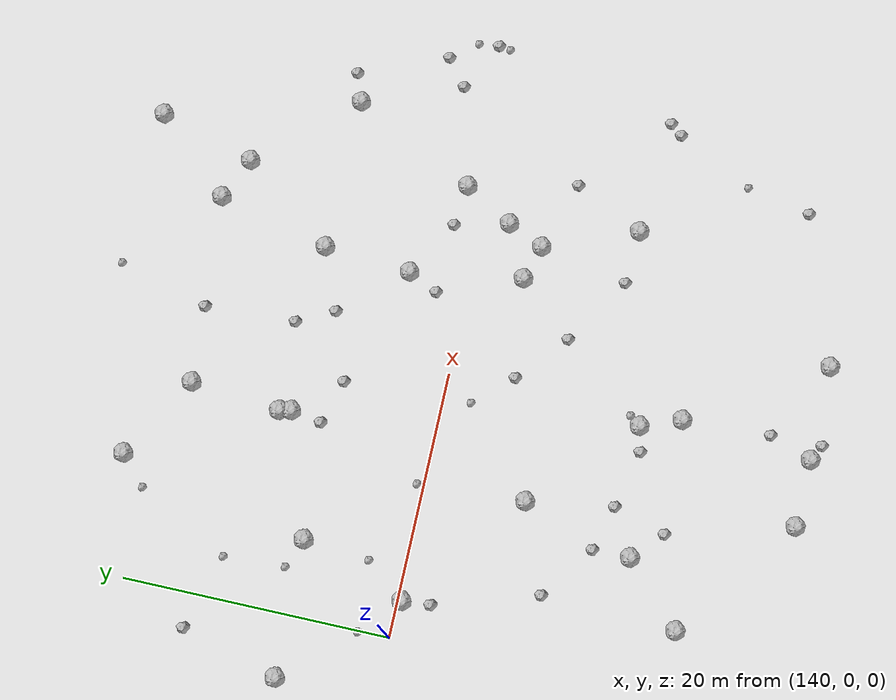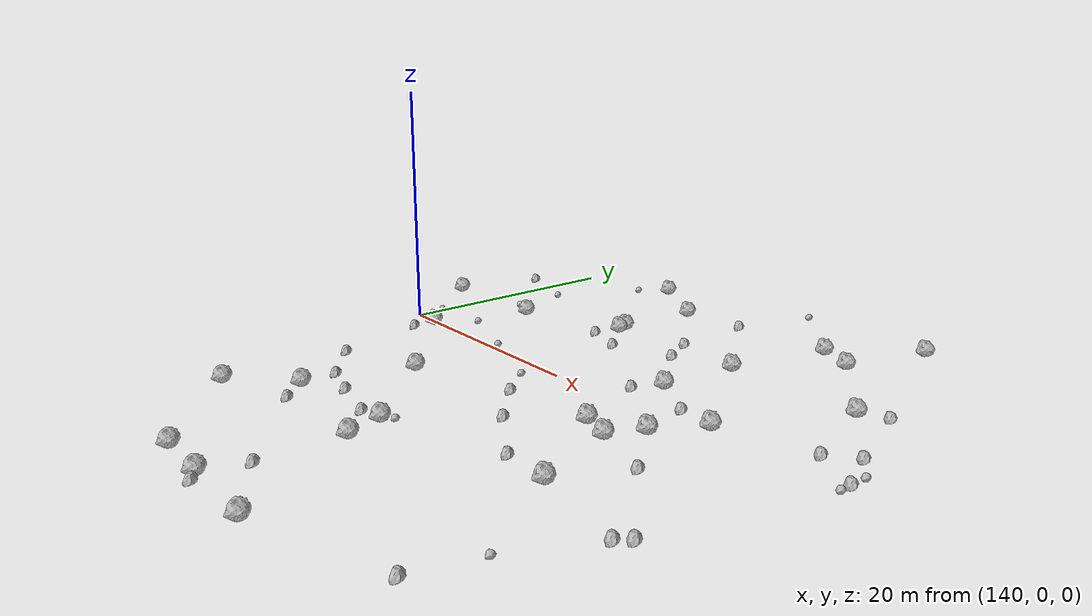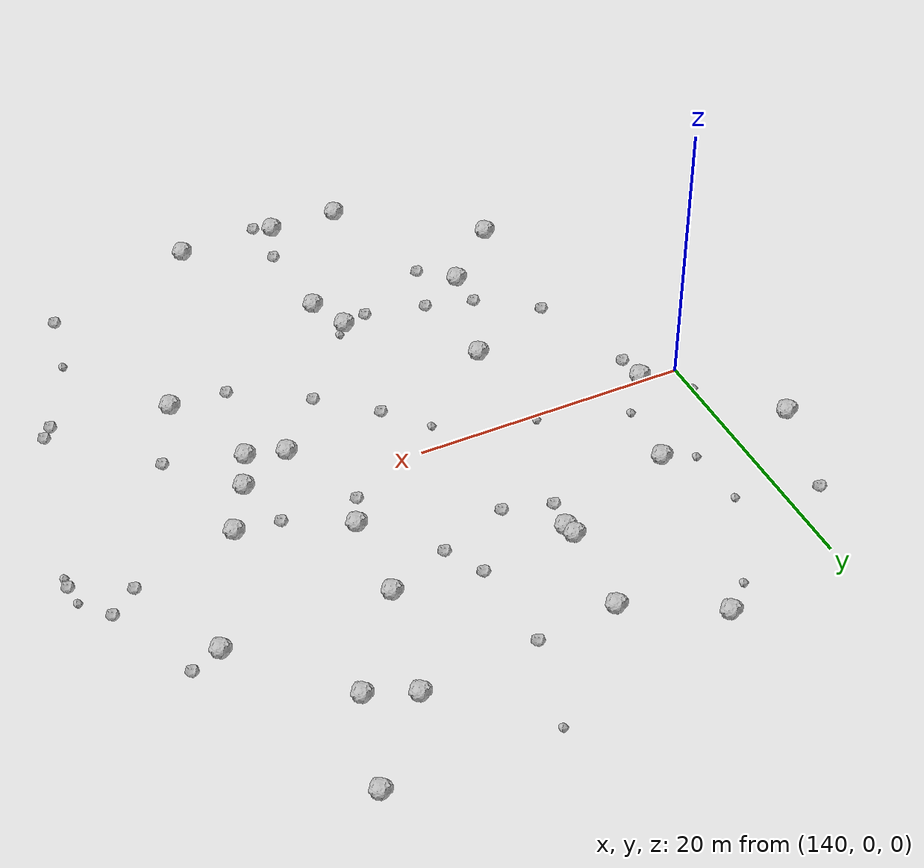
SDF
<sdf version="1.6">
 <world name="default">
  <include><uri>model://sun</uri></include>
  <model name="rock1_4_1">
   <include><uri>model://rock1</uri><pose>135.5151602363163 7.462312081634607 0.5 0 0 0</pose></include>
  </model>
  <model name="rock1_4_2">
   <include><uri>model://rock1</uri><pose>151.91533219268464 -7.51033611952402 0.5 0 0 0</pose></include>
  </model>
  <model name="rock1_4_3">
   <include><uri>model://rock1</uri><pose>175.11340357926093 25.791393028742917 0.5 0 0 0</pose></include>
  </model>
  <model name="rock1_4_4">
   <include><uri>model://rock1</uri><pose>172.32803318853678 -1.9115266356070393 0.5 0 0 0</pose></include>
  </model>
  <model name="rock1_4_5">
   <include><uri>model://rock1</uri><pose>179.3311239347376 11.251857982802186 0.5 0 0 0</pose></include>
  </model>
  <model name="rock1_4_6">
   <include><uri>model://rock1</uri><pose>160.35750781436658 -17.621638511317663 0.5 0 0 0</pose></include>
  </model>
  <model name="rock1_4_7">
   <include><uri>model://rock1</uri><pose>159.46833847939968 -27.449863391089437 0.5 0 0 0</pose></include>
  </model>
  <model name="rock1_4_8">
   <include><uri>model://rock1</uri><pose>154.37378247202068 -27.25953598522055 0.5 0 0 0</pose></include>
  </model>
  <model name="rock1_4_9">
   <include><uri>model://rock1</uri><pose>149.521458112424 -15.858248729201627 0.5 0 0 0</pose></include>
  </model>
  <model name="rock1_4_10">
   <include><uri>model://rock1</uri><pose>167.55947120354512 11.303746523114725 0.5 0 0 0</pose></include>
  </model>
  <model name="rock1_4_11">
   <include><uri>model://rock1</uri><pose>142.84798287135158 -0.24257687619884294 0.5 0 0 0</pose></include>
  </model>
  <model name="rock1_4_12">
   <include><uri>model://rock1</uri><pose>169.68619883319747 19.891013758333983 0.5 0 0 0</pose></include>
  </model>
  <model name="rock1_4_13">
   <include><uri>model://rock1</uri><pose>155.28486320425 18.634828433890675 0.5 0 0 0</pose></include>
  </model>
  <model name="rock1_4_14">
   <include><uri>model://rock1</uri><pose>167.0137351543894 4.649245621403743 0.5 0 0 0</pose></include>
  </model>
  <model name="rock1_4_15">
   <include><uri>model://rock1</uri><pose>149.00908792968883 22.257676872944536 0.5 0 0 0</pose></include>
  </model>
  <model name="rock1_4_16">
   <include><uri>model://rock1</uri><pose>171.07548097065967 -4.6685141496669615 0.5 0 0 0</pose></include>
  </model>
  <model name="rock1_4_17">
   <include><uri>model://rock1</uri><pose>168.36917561473362 -3.842777555027407 0.5 0 0 0</pose></include>
  </model>
  <model name="rock1_4_18">
   <include><uri>model://rock1</uri><pose>145.6644140960986 7.750521613116511 0.5 0 0 0</pose></include>
  </model>
  <model name="rock1_4_19">
   <include><uri>model://rock1</uri><pose>159.22627216430118 -14.612817652971499 0.5 0 0 0</pose></include>
  </model>
  <model name="rock1_4_20">
   <include><uri>model://rock1</uri><pose>173.8426539455729 -11.663283077753974 0.5 0 0 0</pose></include>
  </model>
  <model name="rock1_4_21">
   <include><uri>model://rock1</uri><pose>166.67875433195252 -27.619150799613926 0.5 0 0 0</pose></include>
  </model>
  <model name="rock1_4_22">
   <include><uri>model://rock1</uri><pose>154.5964143355229 11.781159909981021 0.5 0 0 0</pose></include>
  </model>
  <model name="rock1_4_23">
   <include><uri>model://rock1</uri><pose>154.78480760240944 10.88975069082273 0.5 0 0 0</pose></include>
  </model>
  <model name="rock1_4_24">
   <include><uri>model://rock1</uri><pose>174.53792970500888 1.8131652718269855 0.5 0 0 0</pose></include>
  </model>
  <model name="rock1_4_25">
   <include><uri>model://rock1</uri><pose>145.03842024653935 -20.125136227220565 0.5 0 0 0</pose></include>
  </model>
  <model name="rock1_4_26">
   <include><uri>model://rock1</uri><pose>172.93997823996517 18.446482301540627 0.5 0 0 0</pose></include>
  </model>
  <model name="rock2_4_0">
   <include><uri>model://rock2</uri><pose>151.72895581357923 -18.001361607101078 0.3 0 0 0</pose></include>
  </model>
  <model name="rock2_4_1">
   <include><uri>model://rock2</uri><pose>160.67686657215503 -28.138284671436903 0.3 0 0 0</pose></include>
  </model>
  <model name="rock2_4_2">
   <include><uri>model://rock2</uri><pose>160.64057031957043 -24.2746967819974 0.3 0 0 0</pose></include>
  </model>
  <model name="rock2_4_3">
   <include><uri>model://rock2</uri><pose>145.42628036386733 -10.094599371741559 0.3 0 0 0</pose></include>
  </model>
  <model name="rock2_4_4">
   <include><uri>model://rock2</uri><pose>157.32748855848584 -15.067109727488921 0.3 0 0 0</pose></include>
  </model>
  <model name="rock2_4_5">
   <include><uri>model://rock2</uri><pose>157.7563415733827 7.580550416360104 0.3 0 0 0</pose></include>
  </model>
  <model name="rock2_4_6">
   <include><uri>model://rock2</uri><pose>171.33746097064136 2.1817345652823903 0.3 0 0 0</pose></include>
  </model>
  <model name="rock2_4_7">
   <include><uri>model://rock2</uri><pose>164.51156644766223 -8.107920104496095 0.3 0 0 0</pose></include>
  </model>
  <model name="rock2_4_8">
   <include><uri>model://rock2</uri><pose>142.99924664356925 -2.3498453648485835 0.3 0 0 0</pose></include>
  </model>
  <model name="rock2_4_9">
   <include><uri>model://rock2</uri><pose>182.00115908159816 -13.303106765513778 0.3 0 0 0</pose></include>
  </model>
  <model name="rock2_4_10">
   <include><uri>model://rock2</uri><pose>161.4231731942306 12.189787270585931 0.3 0 0 0</pose></include>
  </model>
  <model name="rock2_4_11">
   <include><uri>model://rock2</uri><pose>186.0441902553757 1.8537566288427207 0.3 0 0 0</pose></include>
  </model>
  <model name="rock2_4_12">
   <include><uri>model://rock2</uri><pose>176.40212055990196 -6.4239481339063325 0.3 0 0 0</pose></include>
  </model>
  <model name="rock2_4_13">
   <include><uri>model://rock2</uri><pose>161.10184392713973 19.09940548257851 0.3 0 0 0</pose></include>
  </model>
  <model name="rock2_4_14">
   <include><uri>model://rock2</uri><pose>169.68964710427974 -11.419610253746004 0.3 0 0 0</pose></include>
  </model>
  <model name="rock2_4_15">
   <include><uri>model://rock2</uri><pose>177.98285560720635 -23.999278707785244 0.3 0 0 0</pose></include>
  </model>
  <model name="rock2_4_16">
   <include><uri>model://rock2</uri><pose>184.30289595186508 5.410253837326664 0.3 0 0 0</pose></include>
  </model>
  <model name="rock2_4_17">
   <include><uri>model://rock2</uri><pose>165.92694622162406 2.367080793959161 0.3 0 0 0</pose></include>
  </model>
  <model name="rock2_4_18">
   <include><uri>model://rock2</uri><pose>137.5217435465268 14.850348114528188 0.3 0 0 0</pose></include>
  </model>
  <model name="rock2_4_19">
   <include><uri>model://rock2</uri><pose>182.23550187186703 3.8038366950457103 0.3 0 0 0</pose></include>
  </model>
  <model name="rock2_4_20">
   <include><uri>model://rock2</uri><pose>154.37121671445868 8.575865432532666 0.3 0 0 0</pose></include>
  </model>
  <model name="rock2_4_21">
   <include><uri>model://rock2</uri><pose>182.75468735550783 -12.384482254916396 0.3 0 0 0</pose></include>
  </model>
  <model name="rock2_4_22">
   <include><uri>model://rock2</uri><pose>181.54754936790346 12.076492341386569 0.3 0 0 0</pose></include>
  </model>
  <model name="rock2_4_23">
   <include><uri>model://rock2</uri><pose>152.9313499995617 -14.038373038867588 0.3 0 0 0</pose></include>
  </model>
  <model name="rock2_4_24">
   <include><uri>model://rock2</uri><pose>160.79046666416878 -4.853157617856752 0.3 0 0 0</pose></include>
  </model>
  <model name="rock2_4_25">
   <include><uri>model://rock2</uri><pose>162.86779368001618 9.399092015815576 0.3 0 0 0</pose></include>
  </model>
  <model name="rock2_4_26">
   <include><uri>model://rock2</uri><pose>149.48424773561837 -13.065816356079903 0.3 0 0 0</pose></include>
  </model>
  <model name="rock3_4_0">
   <include><uri>model://rock3</uri><pose>185.93470201435295 0.9285591236546544 0.2 0 0 0</pose></include>
  </model>
  <model name="rock3_4_1">
   <include><uri>model://rock3</uri><pose>146.80014660442959 20.300849354944972 0.2 0 0 0</pose></include>
  </model>
  <model name="rock3_4_2">
   <include><uri>model://rock3</uri><pose>151.41922471778992 0.5388366640043252 0.2 0 0 0</pose></include>
  </model>
  <model name="rock3_4_3">
   <include><uri>model://rock3</uri><pose>158.21273284669425 -2.041461047955515 0.2 0 0 0</pose></include>
  </model>
  <model name="rock3_4_4">
   <include><uri>model://rock3</uri><pose>159.84626817201124 -13.851290203833404 0.2 0 0 0</pose></include>
  </model>
  <model name="rock3_4_5">
   <include><uri>model://rock3</uri><pose>185.88560433884626 3.405802356432929 0.2 0 0 0</pose></include>
  </model>
  <model name="rock3_4_6">
   <include><uri>model://rock3</uri><pose>179.01943298457576 -19.143912785663872 0.2 0 0 0</pose></include>
  </model>
  <model name="rock3_4_7">
   <include><uri>model://rock3</uri><pose>145.17508047880813 2.7505427288824293 0.2 0 0 0</pose></include>
  </model>
  <model name="rock3_4_8">
   <include><uri>model://rock3</uri><pose>143.1381423432254 13.239686521808245 0.2 0 0 0</pose></include>
  </model>
  <model name="rock3_4_9">
   <include><uri>model://rock3</uri><pose>163.02240405004756 26.03206641997741 0.2 0 0 0</pose></include>
  </model>
  <model name="rock3_4_10">
   <include><uri>model://rock3</uri><pose>143.37797290501834 8.622610690086965 0.2 0 0 0</pose></include>
  </model>
  <model name="rock3_4_11">
   <include><uri>model://rock3</uri><pose>139.92962067014642 2.3568634027681696 0.2 0 0 0</pose></include>
  </model>
 </world>
</sdf>
